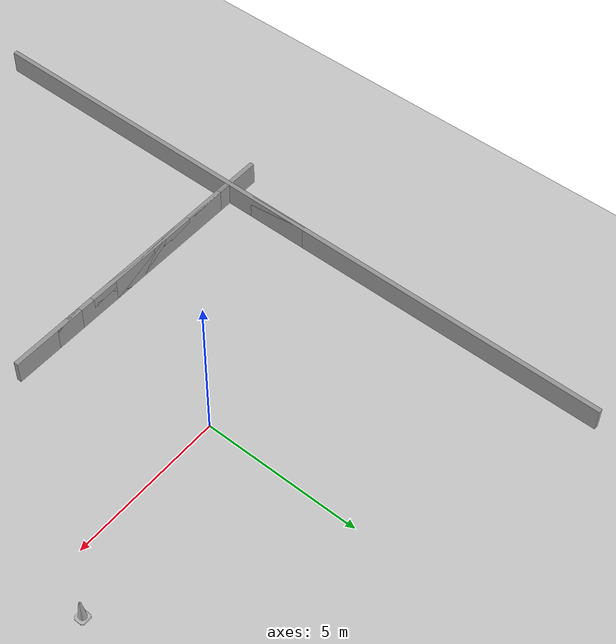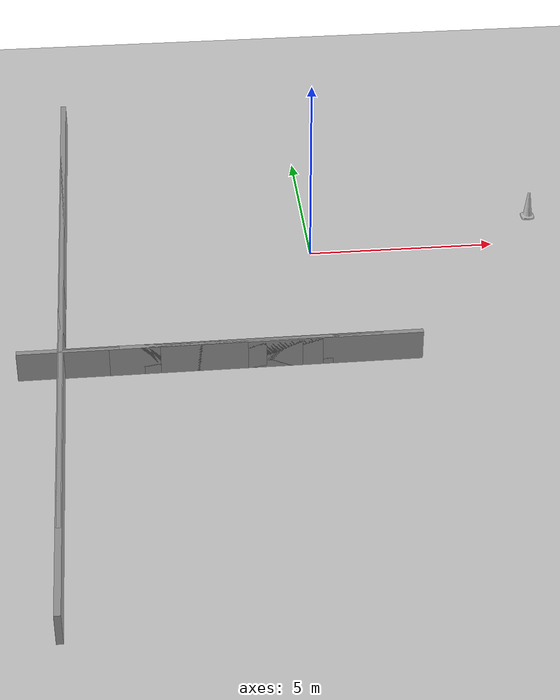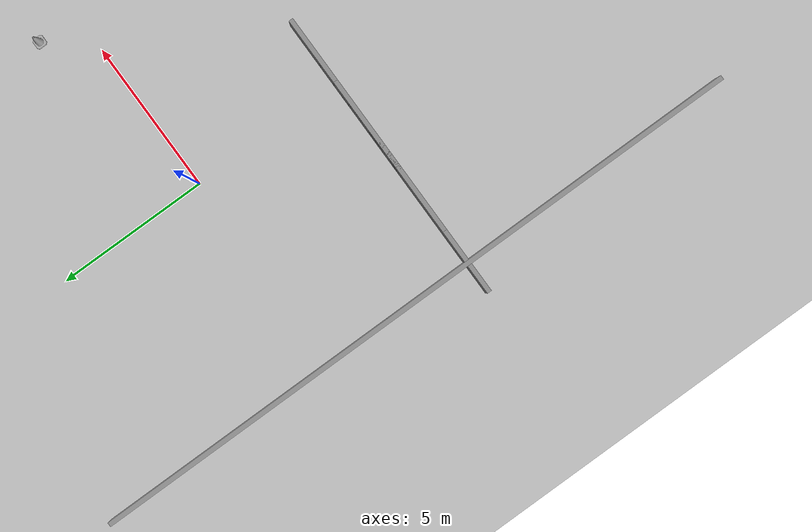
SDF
<sdf version="1.6">
 <world name="default">
  <light name="sun" type="directional">
   <pose>0 0 10 0 -0 0</pose>
   <diffuse>0.8 0.8 0.8 1</diffuse>
   <specular>0.1 0.1 0.1 1</specular>
   <attenuation>
    <range>1000</range>
    <constant>0.9</constant>
    <linear>0.01</linear>
    <quadratic>0.001</quadratic>
   </attenuation>
   <direction>-0.5 0.5 -1</direction>
  </light>
  <model name="ground_plane">
   <static>1</static>
   <link name="link">
    <collision name="collision">
     <geometry><plane><normal>0 0 1</normal><size>100 100</size></plane></geometry>
     <surface><friction><ode><mu>100</mu><mu2>50</mu2></ode></friction></surface>
    </collision>
    <visual name="visual">
     <cast_shadows>0</cast_shadows>
     <geometry><plane><normal>0 0 1</normal><size>100 100</size></plane></geometry>
     <material>
      <script><uri>file://media/materials/scripts/gazebo.material</uri><name>Gazebo/Grey</name></script>
     </material>
    </visual>
   </link>
  </model>
  <gravity>0 0 -9.8</gravity>
  <magnetic_field>6e-06 2.3e-05 -4.2e-05</magnetic_field>
  <atmosphere type="adiabatic"/>
  <physics name="default_physics" default="0" type="ode">
   <max_step_size>0.001</max_step_size>
   <real_time_factor>1</real_time_factor>
   <real_time_update_rate>1000</real_time_update_rate>
  </physics>
  <scene><ambient>0.4 0.4 0.4 1</ambient><background>0.7 0.7 0.7 1</background><shadows>1</shadows></scene>
  <spherical_coordinates>
   <surface_model>EARTH_WGS84</surface_model>
   <latitude_deg>0</latitude_deg>
   <longitude_deg>0</longitude_deg>
   <elevation>0</elevation>
   <heading_deg>0</heading_deg>
  </spherical_coordinates>
  <model name="runway">
   <pose>6.11551 -3.175 0 0 -0 0</pose>
   <link name="Wall_0">
    <collision name="Wall_0_Collision"><geometry><box><size>22.5 0.15 1.5</size></box></geometry></collision>
    <visual name="Wall_0_Visual">
     <geometry><box><size>22.5 0.15 1.5</size></box></geometry>
     <material>
      <script><uri>file://media/materials/scripts/gazebo.material</uri><name>Gazebo/Grey</name></script>
      <ambient>1 1 1 1</ambient>
     </material>
    </visual>
    <pose>-12.8055 0 0 0 0 -1.5708</pose>
   </link>
   <link name="Wall_1">
    <collision name="Wall_1_Collision"><geometry><box><size>5.5 0.15 1.5</size></box></geometry></collision>
    <visual name="Wall_1_Visual">
     <geometry><box><size>5.5 0.15 1.5</size></box></geometry>
     <material>
      <script><uri>file://media/materials/scripts/gazebo.material</uri><name>Gazebo/Grey</name></script>
      <ambient>1 1 1 1</ambient>
     </material>
    </visual>
    <pose>-8.88051 -1.925 0 0 -0 0</pose>
   </link>
   <link name="Wall_2">
    <collision name="Wall_2_Collision"><geometry><box><size>4.5 0.15 1.5</size></box></geometry></collision>
    <visual name="Wall_2_Visual">
     <geometry><box><size>4.5 0.15 1.5</size></box></geometry>
     <material>
      <script><uri>file://media/materials/scripts/gazebo.material</uri><name>Gazebo/Grey</name></script>
      <ambient>1 1 1 1</ambient>
     </material>
    </visual>
    <pose>-8.88051 -1.925 0 0 -0 0</pose>
   </link>
   <link name="Wall_3">
    <collision name="Wall_3_Collision"><geometry><box><size>4 0.15 1.5</size></box></geometry></collision>
    <visual name="Wall_3_Visual">
     <geometry><box><size>4 0.15 1.5</size></box></geometry>
     <material>
      <script><uri>file://media/materials/scripts/gazebo.material</uri><name>Gazebo/Grey</name></script>
      <ambient>1 1 1 1</ambient>
     </material>
    </visual>
    <pose>-8.88051 -1.925 0 0 -0 0</pose>
   </link>
   <link name="Wall_4">
    <collision name="Wall_4_Collision"><geometry><box><size>2 0.15 1.5</size></box></geometry></collision>
    <visual name="Wall_4_Visual">
     <geometry><box><size>2 0.15 1.5</size></box></geometry>
     <material>
      <script><uri>file://media/materials/scripts/gazebo.material</uri><name>Gazebo/Grey</name></script>
      <ambient>1 1 1 1</ambient>
     </material>
    </visual>
    <pose>-8.88051 -1.925 0 0 -0 0</pose>
   </link>
   <link name="Wall_5">
    <collision name="Wall_5_Collision"><geometry><box><size>1.3 0.15 1.5</size></box></geometry></collision>
    <visual name="Wall_5_Visual">
     <geometry><box><size>1.3 0.15 1.5</size></box></geometry>
     <material>
      <script><uri>file://media/materials/scripts/gazebo.material</uri><name>Gazebo/Grey</name></script>
      <ambient>1 1 1 1</ambient>
     </material>
    </visual>
    <pose>-8.88051 -1.925 0 0 -0 0</pose>
   </link>
   <link name="Wall_6">
    <collision name="Wall_6_Collision"><geometry><box><size>10 0.15 1.5</size></box></geometry></collision>
    <visual name="Wall_6_Visual">
     <geometry><box><size>10 0.15 1.5</size></box></geometry>
     <material>
      <script><uri>file://media/materials/scripts/gazebo.material</uri><name>Gazebo/Grey</name></script>
      <ambient>1 1 1 1</ambient>
     </material>
    </visual>
    <pose>-8.88051 -1.925 0 0 -0 0</pose>
   </link>
   <link name="Wall_7">
    <collision name="Wall_7_Collision"><geometry><box><size>5 0.15 1.5</size></box></geometry></collision>
    <visual name="Wall_7_Visual">
     <geometry><box><size>5 0.15 1.5</size></box></geometry>
     <material>
      <script><uri>file://media/materials/scripts/gazebo.material</uri><name>Gazebo/Grey</name></script>
      <ambient>1 1 1 1</ambient>
     </material>
    </visual>
    <pose>-8.88051 -1.925 0 0 -0 0</pose>
   </link>
   <link name="Wall_8">
    <collision name="Wall_8_Collision"><geometry><box><size>2 0.15 1.5</size></box></geometry></collision>
    <visual name="Wall_8_Visual">
     <geometry><box><size>2 0.15 1.5</size></box></geometry>
     <material>
      <script><uri>file://media/materials/scripts/gazebo.material</uri><name>Gazebo/Grey</name></script>
      <ambient>1 1 1 1</ambient>
     </material>
    </visual>
    <pose>-12.8055 0 0 0 0 -1.5708</pose>
   </link>
   <link name="Wall_9">
    <collision name="Wall_9_Collision"><geometry><box><size>2 0.15 1.5</size></box></geometry></collision>
    <visual name="Wall_9_Visual">
     <geometry><box><size>2 0.15 1.5</size></box></geometry>
     <material>
      <script><uri>file://media/materials/scripts/gazebo.material</uri><name>Gazebo/Grey</name></script>
      <ambient>1 1 1 1</ambient>
     </material>
    </visual>
    <pose>-8.88051 -1.925 0 0 -0 0</pose>
   </link>
   <link name="Wall_10">
    <collision name="Wall_10_Collision"><geometry><box><size>2 0.15 1.5</size></box></geometry></collision>
    <visual name="Wall_10_Visual">
     <geometry><box><size>2 0.15 1.5</size></box></geometry>
     <material>
      <script><uri>file://media/materials/scripts/gazebo.material</uri><name>Gazebo/Grey</name></script>
      <ambient>1 1 1 1</ambient>
     </material>
    </visual>
    <pose>-8.88051 -1.925 0 0 -0 0</pose>
   </link>
   <link name="Wall_11">
    <collision name="Wall_11_Collision"><geometry><box><size>3 0.15 1.5</size></box></geometry></collision>
    <visual name="Wall_11_Visual">
     <geometry><box><size>3 0.15 1.5</size></box></geometry>
     <material>
      <script><uri>file://media/materials/scripts/gazebo.material</uri><name>Gazebo/Grey</name></script>
      <ambient>1 1 1 1</ambient>
     </material>
    </visual>
    <pose>-8.88051 -1.925 0 0 -0 0</pose>
   </link>
   <link name="Wall_12">
    <collision name="Wall_12_Collision"><geometry><box><size>6.9 0.15 1.5</size></box></geometry></collision>
    <visual name="Wall_12_Visual">
     <geometry><box><size>6.9 0.15 1.5</size></box></geometry>
     <material>
      <script><uri>file://media/materials/scripts/gazebo.material</uri><name>Gazebo/Grey</name></script>
      <ambient>1 1 1 1</ambient>
     </material>
    </visual>
    <pose>-8.88051 -1.925 0 0 -0 0</pose>
   </link>
   <link name="Wall_13">
    <collision name="Wall_13_Collision"><geometry><box><size>4.1 0.15 1.5</size></box></geometry></collision>
    <visual name="Wall_13_Visual">
     <geometry><box><size>4.1 0.15 1.5</size></box></geometry>
     <material>
      <script><uri>file://media/materials/scripts/gazebo.material</uri><name>Gazebo/Grey</name></script>
      <ambient>1 1 1 1</ambient>
     </material>
    </visual>
    <pose>-8.88051 -1.925 0 0 -0 0</pose>
   </link>
   <link name="Wall_14">
    <collision name="Wall_14_Collision"><geometry><box><size>3.8 0.15 1.5</size></box></geometry></collision>
    <visual name="Wall_14_Visual">
     <geometry><box><size>3.8 0.15 1.5</size></box></geometry>
     <material>
      <script><uri>file://media/materials/scripts/gazebo.material</uri><name>Gazebo/Grey</name></script>
      <ambient>1 1 1 1</ambient>
     </material>
    </visual>
    <pose>-8.88051 -1.925 0 0 -0 0</pose>
   </link>
   <link name="Wall_15">
    <collision name="Wall_15_Collision"><geometry><box><size>2.2 0.15 1.5</size></box></geometry></collision>
    <visual name="Wall_15_Visual">
     <geometry><box><size>2.2 0.15 1.5</size></box></geometry>
     <material>
      <script><uri>file://media/materials/scripts/gazebo.material</uri><name>Gazebo/Grey</name></script>
      <ambient>1 1 1 1</ambient>
     </material>
    </visual>
    <pose>-8.88051 -1.925 0 0 -0 0</pose>
   </link>
   <link name="Wall_16">
    <collision name="Wall_16_Collision"><geometry><box><size>17.1 0.1 1.5</size></box></geometry></collision>
    <visual name="Wall_16_Visual">
     <geometry><box><size>17.1 0.1 1.5</size></box></geometry>
     <material>
      <script><uri>file://media/materials/scripts/gazebo.material</uri><name>Gazebo/Grey</name></script>
      <ambient>1 1 1 1</ambient>
     </material>
    </visual>
    <pose>-12.8055 0 0 0 0 -1.5708</pose>
   </link>
   <link name="Wall_17">
    <collision name="Wall_17_Collision"><geometry><box><size>3 0.1 1.5</size></box></geometry></collision>
    <visual name="Wall_17_Visual">
     <geometry><box><size>3 0.1 1.5</size></box></geometry>
     <material>
      <script><uri>file://media/materials/scripts/gazebo.material</uri><name>Gazebo/Grey</name></script>
      <ambient>1 1 1 1</ambient>
     </material>
    </visual>
    <pose>-12.8055 0 0 0 0 -1.5708</pose>
   </link>
   <link name="Wall_18">
    <collision name="Wall_18_Collision"><geometry><box><size>1.5 0.1 1.5</size></box></geometry></collision>
    <visual name="Wall_18_Visual">
     <geometry><box><size>1.5 0.1 1.5</size></box></geometry>
     <material>
      <script><uri>file://media/materials/scripts/gazebo.material</uri><name>Gazebo/Grey</name></script>
      <ambient>1 1 1 1</ambient>
     </material>
    </visual>
    <pose>-8.88051 -1.925 0 0 -0 0</pose>
   </link>
   <link name="Wall_19">
    <collision name="Wall_19_Collision"><geometry><box><size>8 0.1 1.5</size></box></geometry></collision>
    <visual name="Wall_19_Visual">
     <geometry><box><size>8 0.1 1.5</size></box></geometry>
     <material>
      <script><uri>file://media/materials/scripts/gazebo.material</uri><name>Gazebo/Grey</name></script>
      <ambient>1 1 1 1</ambient>
     </material>
    </visual>
    <pose>-8.88051 -1.925 0 0 -0 0</pose>
   </link>
   <link name="Wall_20">
    <collision name="Wall_20_Collision"><geometry><box><size>5.8 0.1 1.5</size></box></geometry></collision>
    <visual name="Wall_20_Visual">
     <geometry><box><size>5.8 0.1 1.5</size></box></geometry>
     <material>
      <script><uri>file://media/materials/scripts/gazebo.material</uri><name>Gazebo/Grey</name></script>
      <ambient>1 1 1 1</ambient>
     </material>
    </visual>
    <pose>-8.88051 -1.925 0 0 -0 0</pose>
   </link>
   <link name="Wall_21">
    <collision name="Wall_14_Collision"><geometry><box><size>5.5 0.1 1.5</size></box></geometry></collision>
    <visual name="Wall_21_Visual">
     <geometry><box><size>5.5 0.1 1.5</size></box></geometry>
     <material>
      <script><uri>file://media/materials/scripts/gazebo.material</uri><name>Gazebo/Grey</name></script>
      <ambient>1 1 1 1</ambient>
     </material>
    </visual>
    <pose>-8.88051 -1.925 0 0 -0 0</pose>
   </link>
   <link name="Wall_22">
    <collision name="Wall_22_Collision"><geometry><box><size>1 0.1 1.5</size></box></geometry></collision>
    <visual name="Wall_22_Visual">
     <geometry><box><size>1 0.1 1.5</size></box></geometry>
     <material>
      <script><uri>file://media/materials/scripts/gazebo.material</uri><name>Gazebo/Grey</name></script>
      <ambient>1 1 1 1</ambient>
     </material>
    </visual>
    <pose>-8.88051 -1.925 0 0 -0 0</pose>
   </link>
   <link name="Wall_23">
    <collision name="Wall_12_Collision"><geometry><box><size>1 0.1 1.5</size></box></geometry></collision>
    <visual name="Wall_23_Visual">
     <geometry><box><size>1 0.1 1.5</size></box></geometry>
     <material>
      <script><uri>file://media/materials/scripts/gazebo.material</uri><name>Gazebo/Grey</name></script>
      <ambient>1 1 1 1</ambient>
     </material>
    </visual>
    <pose>-8.88051 -1.925 0 0 -0 0</pose>
   </link>
   <model name="Construction Cone">
    <static>1</static>
    <link name="link">
     <collision name="collision">
      <geometry>
       <mesh><scale>7 7 7</scale><uri>model://construction_cone/meshes/construction_cone.dae</uri></mesh>
      </geometry>
     </collision>
     <visual name="visual">
      <geometry>
       <mesh><scale>7 7 7</scale><uri>model://construction_cone/meshes/construction_cone.dae</uri></mesh>
      </geometry>
     </visual>
    </link>
    <pose>0.183053 4.55016 0 0 -0 0</pose>
   </model>
   <model name="Construction Cone_1">
    <static>1</static>
    <link name="link">
     <collision name="collision">
      <geometry>
       <mesh><scale>7 7 7</scale><uri>model://construction_cone/meshes/construction_cone.dae</uri></mesh>
      </geometry>
     </collision>
     <visual name="visual">
      <geometry>
       <mesh><scale>7 7 7</scale><uri>model://construction_cone/meshes/construction_cone.dae</uri></mesh>
      </geometry>
     </visual>
    </link>
    <pose>0.183053 4.55016 0 0 -0 0</pose>
   </model>
   <model name="Construction Cone_2">
    <static>1</static>
    <link name="link">
     <collision name="collision">
      <geometry>
       <mesh><scale>7 7 7</scale><uri>model://construction_cone/meshes/construction_cone.dae</uri></mesh>
      </geometry>
     </collision>
     <visual name="visual">
      <geometry>
       <mesh><scale>7 7 7</scale><uri>model://construction_cone/meshes/construction_cone.dae</uri></mesh>
      </geometry>
     </visual>
    </link>
    <pose>0.183053 4.55016 0 0 -0 0</pose>
   </model>
   <model name="Construction Cone_3">
    <static>1</static>
    <link name="link">
     <collision name="collision">
      <geometry>
       <mesh><scale>7 7 7</scale><uri>model://construction_cone/meshes/construction_cone.dae</uri></mesh>
      </geometry>
     </collision>
     <visual name="visual">
      <geometry>
       <mesh><scale>7 7 7</scale><uri>model://construction_cone/meshes/construction_cone.dae</uri></mesh>
      </geometry>
     </visual>
    </link>
    <pose>0.183053 4.55016 0 0 -0 0</pose>
   </model>
   <model name="Construction Cone_4">
    <static>1</static>
    <link name="link">
     <collision name="collision">
      <geometry>
       <mesh><scale>7 7 7</scale><uri>model://construction_cone/meshes/construction_cone.dae</uri></mesh>
      </geometry>
     </collision>
     <visual name="visual">
      <geometry>
       <mesh><scale>7 7 7</scale><uri>model://construction_cone/meshes/construction_cone.dae</uri></mesh>
      </geometry>
     </visual>
    </link>
    <pose>0.183053 4.55016 0 0 -0 0</pose>
   </model>
   <model name="Construction Cone_5">
    <static>1</static>
    <link name="link">
     <collision name="collision">
      <geometry>
       <mesh><scale>7 7 7</scale><uri>model://construction_cone/meshes/construction_cone.dae</uri></mesh>
      </geometry>
     </collision>
     <visual name="visual">
      <geometry>
       <mesh><scale>7 7 7</scale><uri>model://construction_cone/meshes/construction_cone.dae</uri></mesh>
      </geometry>
     </visual>
    </link>
    <pose>0.183053 4.55016 0 0 -0 0</pose>
   </model>
   <static>1</static>
  </model>
 </world>
</sdf>
